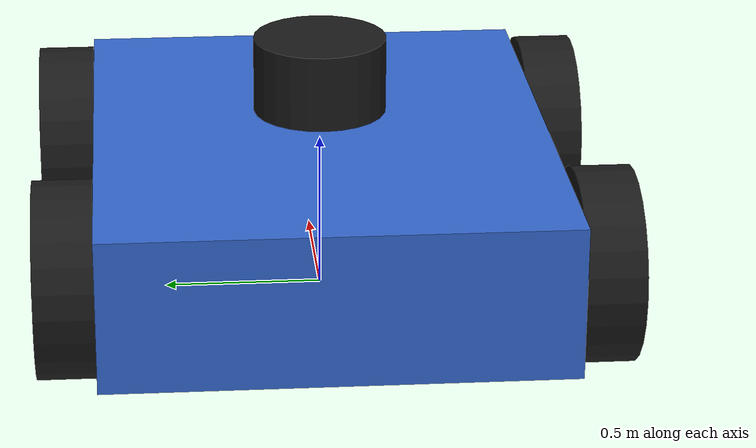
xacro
<?xml version="1.0"?>
<robot name="holonomic_bot" xmlns:xacro="http://www.ros.org/wiki/xacro">

  <xacro:property name="wheel_radius" value="0.30"/>
  <xacro:property name="wheel_width" value="0.18"/>
  <xacro:property name="base_x" value="1.80"/>
  <xacro:property name="base_y" value="1.44"/>
  <xacro:property name="base_z" value="0.48"/>

  <material name="blue">
    <color rgba="0.2 0.4 0.8 1"/>
  </material>
  <material name="dark">
    <color rgba="0.1 0.1 0.1 1"/>
  </material>

  <link name="base_link">
    <visual>
      <origin xyz="0 0 0.30" rpy="0 0 0"/>
      <geometry>
        <box size="${base_x} ${base_y} ${base_z}"/>
      </geometry>
      <material name="blue"/>
    </visual>
    <collision>
      <origin xyz="0 0 0.30" rpy="0 0 0"/>
      <geometry>
        <box size="${base_x} ${base_y} ${base_z}"/>
      </geometry>
    </collision>
    <inertial>
      <mass value="540.0"/>
      <origin xyz="0 0 0.30" rpy="0 0 0"/>
      <inertia ixx="103.63008" ixy="0" ixz="0" iyy="156.14208" iyz="0" izz="239.112"/>
    </inertial>
  </link>

  <!-- Wheels: fixed joints here (TF only, no simulated rotation).
       Origins match models/holonomic_bot/model.sdf exactly:
       centres at x = +-0.60, y = +-0.81, z = 0.30 (= wheel_radius). -->
  <xacro:macro name="wheel" params="name x y">
    <link name="${name}_wheel">
      <visual>
        <origin xyz="0 0 0" rpy="1.5708 0 0"/>
        <geometry>
          <cylinder radius="${wheel_radius}" length="${wheel_width}"/>
        </geometry>
        <material name="dark"/>
      </visual>
      <collision>
        <origin xyz="0 0 0" rpy="1.5708 0 0"/>
        <geometry>
          <cylinder radius="${wheel_radius}" length="${wheel_width}"/>
        </geometry>
      </collision>
      <inertial>
        <mass value="32.4"/>
        <origin xyz="0 0 0" rpy="0 0 0"/>
        <inertia ixx="0.81648" ixy="0" ixz="0" iyy="1.458" iyz="0" izz="0.81648"/>
      </inertial>
    </link>
    <joint name="${name}_wheel_joint" type="fixed">
      <parent link="base_link"/>
      <child link="${name}_wheel"/>
      <origin xyz="${x} ${y} ${wheel_radius}" rpy="0 0 0"/>
    </joint>
  </xacro:macro>

  <xacro:wheel name="front_left"  x="0.60"  y="0.81"/>
  <xacro:wheel name="front_right" x="0.60"  y="-0.81"/>
  <xacro:wheel name="rear_left"   x="-0.60" y="0.81"/>
  <xacro:wheel name="rear_right"  x="-0.60" y="-0.81"/>

  <!-- IMU frame. Must match the SDF frame `imu_link` (attached_to base_link,
       pose 0 0 0.30) so the bridged /imu message's frame_id resolves in TF
       and the EKF can transform it into base_link. -->
  <link name="imu_link">
    <visual>
      <geometry>
        <box size="0.05 0.05 0.02"/>
      </geometry>
      <material name="dark"/>
    </visual>
    <inertial>
      <mass value="0.01"/>
      <inertia ixx="1e-6" ixy="0" ixz="0" iyy="1e-6" iyz="0" izz="1e-6"/>
    </inertial>
  </link>
  <joint name="imu_joint" type="fixed">
    <parent link="base_link"/>
    <child link="imu_link"/>
    <origin xyz="0 0 0.30" rpy="0 0 0"/>
  </joint>

  <!-- Lidar -->
  <link name="lidar_link">
    <visual>
      <geometry>
        <cylinder radius="0.21" length="0.24"/>
      </geometry>
      <material name="dark"/>
    </visual>
    <collision>
      <geometry>
        <cylinder radius="0.21" length="0.24"/>
      </geometry>
    </collision>
    <inertial>
      <mass value="0.05"/>
      <origin xyz="0 0 0" rpy="0 0 0"/>
      <inertia ixx="0.000022" ixy="0" ixz="0" iyy="0.000022" iyz="0" izz="0.0000306"/>
    </inertial>
  </link>
  <joint name="lidar_joint" type="fixed">
    <parent link="base_link"/>
    <child link="lidar_link"/>
    <origin xyz="0 0 0.72" rpy="0 0 0"/>
  </joint>

</robot>
